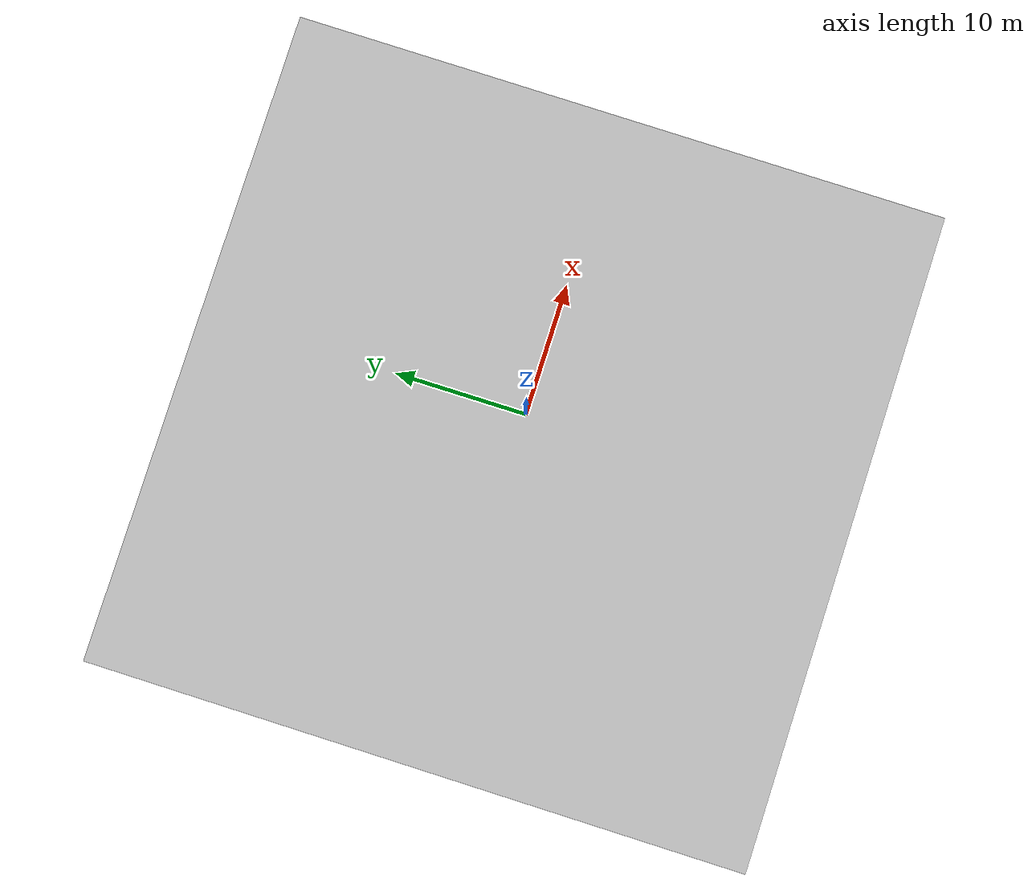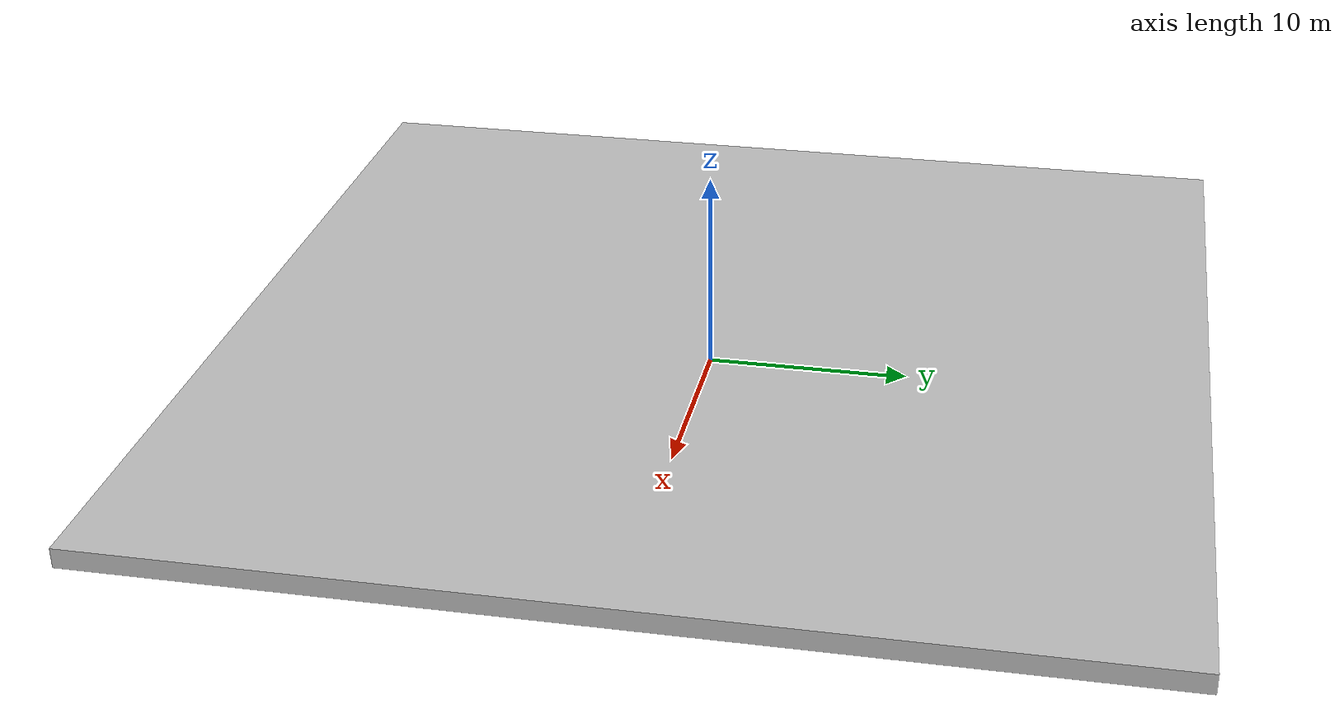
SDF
<?xml version="1.0"?>
<sdf version="1.4">
  <world name="default">

    <model name="boeing_model">
      <link name="mesh_link">
        <pose>0 0 0 0 0 0</pose>

        <collision name="mesh_collision">
          <geometry>
    	    <mesh>
	      <uri>model://gazebo_ray_trace/sdf/flat_plate.stl</uri>
	      <scale>1.0 1.0 1.0</scale>
	    </mesh>

          </geometry>

        </collision>

        <visual name="mesh_visual">
          <geometry>
    	    <mesh>
	      <uri>model://gazebo_ray_trace/sdf/flat_plate.stl</uri>
	      <scale>1.0 1.0 1.0</scale>
	    </mesh>
          </geometry>
        </visual>
      </link>
    </model>

    <plugin filename="libdistance_ray_trace.so" name="ray_tracer"/>
  </world>
</sdf>
